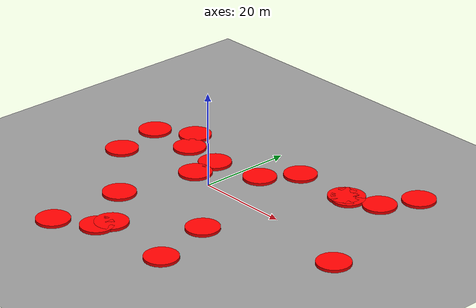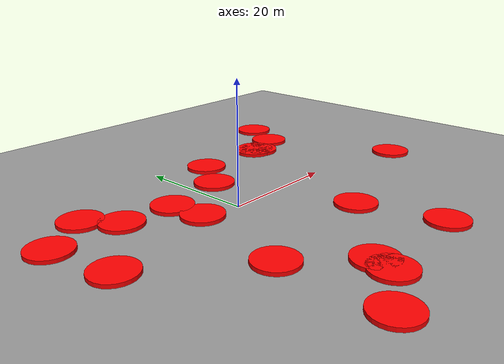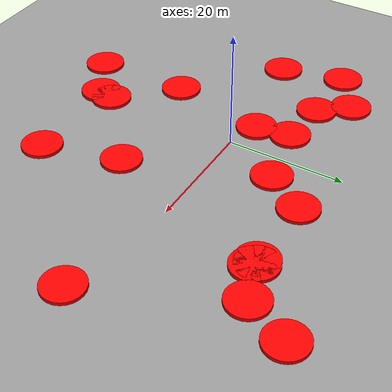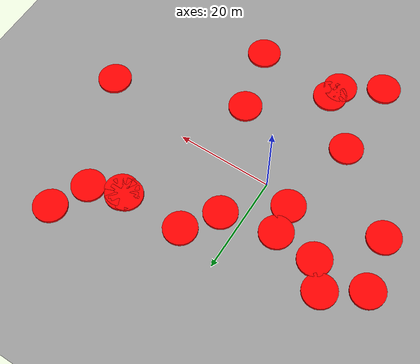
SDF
<sdf version="1.9">
 <world name="default">
  <model name="ground_plane">
   <static>true</static>
   <link name="link">
    <collision name="collision">
     <geometry><plane><normal>0 0 1</normal><size>100 100</size></plane></geometry>
     <surface><contact><collide_without_contact_bitmask>0x01</collide_without_contact_bitmask></contact></surface>
    </collision>
    <visual name="visual">
     <geometry><plane><normal>0 0 1</normal><size>100 100</size></plane></geometry>
     <material><ambient>0.6 0.6 0.6 1</ambient><diffuse>0.6 0.6 0.6 1</diffuse></material>
    </visual>
   </link>
  </model>
  <model name="moving_cylinder_0">
   <pose>22.701236559745183 16.963150792599492 0 0 0 0</pose>
   <link name="moving_link">
    <gravity>false</gravity>
    <visual name="visual">
     <geometry><cylinder><radius>3.5</radius><length>1.0</length></cylinder></geometry>
     <material><ambient>1 0 0 1</ambient></material>
    </visual>
   </link>
   <motion>
    <link_name>moving_link</link_name>
    <direction>0.7791700032151067 -0.6268126562935457 0</direction>
    <amplitude>25.21632995776497</amplitude>
    <speed>30.0</speed>
    <turnaround_threshold>0.5</turnaround_threshold>
   </motion>
  </model>
  <model name="moving_cylinder_1">
   <pose>-26.837700284093117 8.569505652087237 0 0 0 0</pose>
   <link name="moving_link">
    <gravity>false</gravity>
    <visual name="visual">
     <geometry><cylinder><radius>3.5</radius><length>1.0</length></cylinder></geometry>
     <material><ambient>1 0 0 1</ambient></material>
    </visual>
   </link>
   <motion>
    <link_name>moving_link</link_name>
    <direction>0.36479495454665073 -0.931087880458825 0</direction>
    <amplitude>20.38992558068366</amplitude>
    <speed>30.0</speed>
    <turnaround_threshold>0.5</turnaround_threshold>
   </motion>
  </model>
  <model name="moving_cylinder_2">
   <pose>29.358648175949554 19.02138191886978 0 0 0 0</pose>
   <link name="moving_link">
    <gravity>false</gravity>
    <visual name="visual">
     <geometry><cylinder><radius>3.5</radius><length>1.0</length></cylinder></geometry>
     <material><ambient>1 0 0 1</ambient></material>
    </visual>
   </link>
   <motion>
    <link_name>moving_link</link_name>
    <direction>-0.5371551380136347 0.8434834661720129 0</direction>
    <amplitude>29.328769988706895</amplitude>
    <speed>30.0</speed>
    <turnaround_threshold>0.5</turnaround_threshold>
   </motion>
  </model>
  <model name="moving_cylinder_3">
   <pose>13.025706649382414 -12.976110818871916 0 0 0 0</pose>
   <link name="moving_link">
    <gravity>false</gravity>
    <visual name="visual">
     <geometry><cylinder><radius>3.5</radius><length>1.0</length></cylinder></geometry>
     <material><ambient>1 0 0 1</ambient></material>
    </visual>
   </link>
   <motion>
    <link_name>moving_link</link_name>
    <direction>-0.6853755369573226 0.7281897921149828 0</direction>
    <amplitude>32.570421846289264</amplitude>
    <speed>30.0</speed>
    <turnaround_threshold>0.5</turnaround_threshold>
   </motion>
  </model>
  <model name="moving_cylinder_4">
   <pose>32.91378433822172 26.495991508439502 0 0 0 0</pose>
   <link name="moving_link">
    <gravity>false</gravity>
    <visual name="visual">
     <geometry><cylinder><radius>3.5</radius><length>1.0</length></cylinder></geometry>
     <material><ambient>1 0 0 1</ambient></material>
    </visual>
   </link>
   <motion>
    <link_name>moving_link</link_name>
    <direction>0.13126493352398175 0.9913473242143465 0</direction>
    <amplitude>21.926014634242264</amplitude>
    <speed>30.0</speed>
    <turnaround_threshold>0.5</turnaround_threshold>
   </motion>
  </model>
  <model name="moving_cylinder_5">
   <pose>39.796568615092184 -3.950222151609715 0 0 0 0</pose>
   <link name="moving_link">
    <gravity>false</gravity>
    <visual name="visual">
     <geometry><cylinder><radius>3.5</radius><length>1.0</length></cylinder></geometry>
     <material><ambient>1 0 0 1</ambient></material>
    </visual>
   </link>
   <motion>
    <link_name>moving_link</link_name>
    <direction>-0.09335869217205221 0.9956325399442929 0</direction>
    <amplitude>34.79765046163901</amplitude>
    <speed>30.0</speed>
    <turnaround_threshold>0.5</turnaround_threshold>
   </motion>
  </model>
  <model name="moving_cylinder_6">
   <pose>-19.349300020931242 13.339151507136492 0 0 0 0</pose>
   <link name="moving_link">
    <gravity>false</gravity>
    <visual name="visual">
     <geometry><cylinder><radius>3.5</radius><length>1.0</length></cylinder></geometry>
     <material><ambient>1 0 0 1</ambient></material>
    </visual>
   </link>
   <motion>
    <link_name>moving_link</link_name>
    <direction>-0.7746214429256905 -0.6324251893779385 0</direction>
    <amplitude>29.17035611297809</amplitude>
    <speed>30.0</speed>
    <turnaround_threshold>0.5</turnaround_threshold>
   </motion>
  </model>
  <model name="moving_cylinder_7">
   <pose>-5.942391944207614 1.6872807394166998 0 0 0 0</pose>
   <link name="moving_link">
    <gravity>false</gravity>
    <visual name="visual">
     <geometry><cylinder><radius>3.5</radius><length>1.0</length></cylinder></geometry>
     <material><ambient>1 0 0 1</ambient></material>
    </visual>
   </link>
   <motion>
    <link_name>moving_link</link_name>
    <direction>0.7246349625399525 0.6891329124811276 0</direction>
    <amplitude>33.48184022189344</amplitude>
    <speed>30.0</speed>
    <turnaround_threshold>0.5</turnaround_threshold>
   </motion>
  </model>
  <model name="moving_cylinder_8">
   <pose>-15.543786033844285 8.477636971894398 0 0 0 0</pose>
   <link name="moving_link">
    <gravity>false</gravity>
    <visual name="visual">
     <geometry><cylinder><radius>3.5</radius><length>1.0</length></cylinder></geometry>
     <material><ambient>1 0 0 1</ambient></material>
    </visual>
   </link>
   <motion>
    <link_name>moving_link</link_name>
    <direction>0.12461799929752314 0.9922047945112352 0</direction>
    <amplitude>33.213043067093565</amplitude>
    <speed>30.0</speed>
    <turnaround_threshold>0.5</turnaround_threshold>
   </motion>
  </model>
  <model name="moving_cylinder_9">
   <pose>21.99128154814565 16.642996540156943 0 0 0 0</pose>
   <link name="moving_link">
    <gravity>false</gravity>
    <visual name="visual">
     <geometry><cylinder><radius>3.5</radius><length>1.0</length></cylinder></geometry>
     <material><ambient>1 0 0 1</ambient></material>
    </visual>
   </link>
   <motion>
    <link_name>moving_link</link_name>
    <direction>0.9950546617473861 -0.09932884845197351 0</direction>
    <amplitude>25.905072269117532</amplitude>
    <speed>30.0</speed>
    <turnaround_threshold>0.5</turnaround_threshold>
   </motion>
  </model>
  <model name="moving_cylinder_10">
   <pose>-9.348356918182198 -15.426949882083534 0 0 0 0</pose>
   <link name="moving_link">
    <gravity>false</gravity>
    <visual name="visual">
     <geometry><cylinder><radius>3.5</radius><length>1.0</length></cylinder></geometry>
     <material><ambient>1 0 0 1</ambient></material>
    </visual>
   </link>
   <motion>
    <link_name>moving_link</link_name>
    <direction>0.6454858563312209 -0.7637722234255122 0</direction>
    <amplitude>34.91938003521714</amplitude>
    <speed>30.0</speed>
    <turnaround_threshold>0.5</turnaround_threshold>
   </motion>
  </model>
  <model name="moving_cylinder_11">
   <pose>-1.378451956731027 -27.48025927687856 0 0 0 0</pose>
   <link name="moving_link">
    <gravity>false</gravity>
    <visual name="visual">
     <geometry><cylinder><radius>3.5</radius><length>1.0</length></cylinder></geometry>
     <material><ambient>1 0 0 1</ambient></material>
    </visual>
   </link>
   <motion>
    <link_name>moving_link</link_name>
    <direction>-0.8128416555461059 0.5824847148286947 0</direction>
    <amplitude>23.518123998330736</amplitude>
    <speed>30.0</speed>
    <turnaround_threshold>0.5</turnaround_threshold>
   </motion>
  </model>
  <model name="moving_cylinder_12">
   <pose>9.123370219202656 16.820405145992652 0 0 0 0</pose>
   <link name="moving_link">
    <gravity>false</gravity>
    <visual name="visual">
     <geometry><cylinder><radius>3.5</radius><length>1.0</length></cylinder></geometry>
     <material><ambient>1 0 0 1</ambient></material>
    </visual>
   </link>
   <motion>
    <link_name>moving_link</link_name>
    <direction>0.09283281197789665 0.9956817106988942 0</direction>
    <amplitude>27.19319683682745</amplitude>
    <speed>30.0</speed>
    <turnaround_threshold>0.5</turnaround_threshold>
   </motion>
  </model>
  <model name="moving_cylinder_13">
   <pose>23.227207472589754 16.380336425567947 0 0 0 0</pose>
   <link name="moving_link">
    <gravity>false</gravity>
    <visual name="visual">
     <geometry><cylinder><radius>3.5</radius><length>1.0</length></cylinder></geometry>
     <material><ambient>1 0 0 1</ambient></material>
    </visual>
   </link>
   <motion>
    <link_name>moving_link</link_name>
    <direction>-0.6576346968887432 0.7533369800083166 0</direction>
    <amplitude>24.19842866757861</amplitude>
    <speed>30.0</speed>
    <turnaround_threshold>0.5</turnaround_threshold>
   </motion>
  </model>
  <model name="moving_cylinder_14">
   <pose>-6.730737600975878 7.67853899478547 0 0 0 0</pose>
   <link name="moving_link">
    <gravity>false</gravity>
    <visual name="visual">
     <geometry><cylinder><radius>3.5</radius><length>1.0</length></cylinder></geometry>
     <material><ambient>1 0 0 1</ambient></material>
    </visual>
   </link>
   <motion>
    <link_name>moving_link</link_name>
    <direction>-0.5636122009622233 -0.8260395189859372 0</direction>
    <amplitude>47.89929141482085</amplitude>
    <speed>30.0</speed>
    <turnaround_threshold>0.5</turnaround_threshold>
   </motion>
  </model>
  <model name="moving_cylinder_15">
   <pose>16.58838437348804 -26.434496064260326 0 0 0 0</pose>
   <link name="moving_link">
    <gravity>false</gravity>
    <visual name="visual">
     <geometry><cylinder><radius>3.5</radius><length>1.0</length></cylinder></geometry>
     <material><ambient>1 0 0 1</ambient></material>
    </visual>
   </link>
   <motion>
    <link_name>moving_link</link_name>
    <direction>0.314211580843759 0.9493529809631747 0</direction>
    <amplitude>21.46552326360958</amplitude>
    <speed>30.0</speed>
    <turnaround_threshold>0.5</turnaround_threshold>
   </motion>
  </model>
  <model name="moving_cylinder_16">
   <pose>-24.495115768478385 -2.386910954994704 0 0 0 0</pose>
   <link name="moving_link">
    <gravity>false</gravity>
    <visual name="visual">
     <geometry><cylinder><radius>3.5</radius><length>1.0</length></cylinder></geometry>
     <material><ambient>1 0 0 1</ambient></material>
    </visual>
   </link>
   <motion>
    <link_name>moving_link</link_name>
    <direction>0.586451102950309 -0.8099846318593743 0</direction>
    <amplitude>24.369693751074145</amplitude>
    <speed>30.0</speed>
    <turnaround_threshold>0.5</turnaround_threshold>
   </motion>
  </model>
  <model name="moving_cylinder_17">
   <pose>-0.5397917749980508 -24.57749380046987 0 0 0 0</pose>
   <link name="moving_link">
    <gravity>false</gravity>
    <visual name="visual">
     <geometry><cylinder><radius>3.5</radius><length>1.0</length></cylinder></geometry>
     <material><ambient>1 0 0 1</ambient></material>
    </visual>
   </link>
   <motion>
    <link_name>moving_link</link_name>
    <direction>-0.5565728318115317 -0.8307988221520854 0</direction>
    <amplitude>20.332689088281906</amplitude>
    <speed>30.0</speed>
    <turnaround_threshold>0.5</turnaround_threshold>
   </motion>
  </model>
  <model name="moving_cylinder_18">
   <pose>4.428701734448552 9.912248538359165 0 0 0 0</pose>
   <link name="moving_link">
    <gravity>false</gravity>
    <visual name="visual">
     <geometry><cylinder><radius>3.5</radius><length>1.0</length></cylinder></geometry>
     <material><ambient>1 0 0 1</ambient></material>
    </visual>
   </link>
   <motion>
    <link_name>moving_link</link_name>
    <direction>0.18405548395632565 0.9829158554146956 0</direction>
    <amplitude>33.16529807728617</amplitude>
    <speed>30.0</speed>
    <turnaround_threshold>0.5</turnaround_threshold>
   </motion>
  </model>
  <model name="moving_cylinder_19">
   <pose>-9.185599762786836 -32.15570580446315 0 0 0 0</pose>
   <link name="moving_link">
    <gravity>false</gravity>
    <visual name="visual">
     <geometry><cylinder><radius>3.5</radius><length>1.0</length></cylinder></geometry>
     <material><ambient>1 0 0 1</ambient></material>
    </visual>
   </link>
   <motion>
    <link_name>moving_link</link_name>
    <direction>-0.9790826110125 0.20346311904850334 0</direction>
    <amplitude>27.657667836869642</amplitude>
    <speed>30.0</speed>
    <turnaround_threshold>0.5</turnaround_threshold>
   </motion>
  </model>
 </world>
</sdf>
